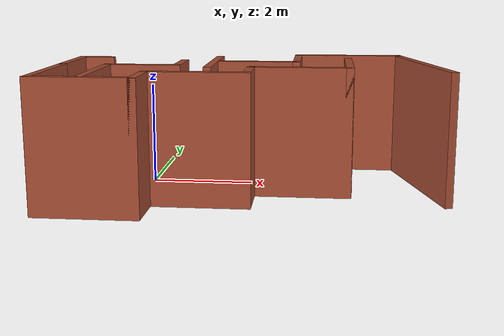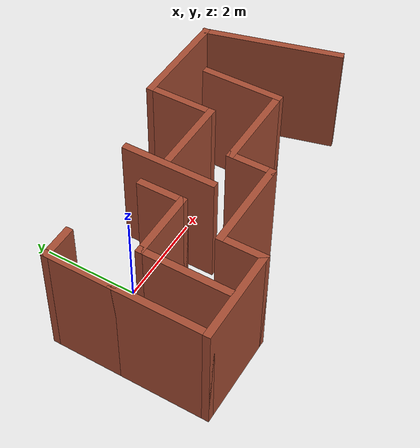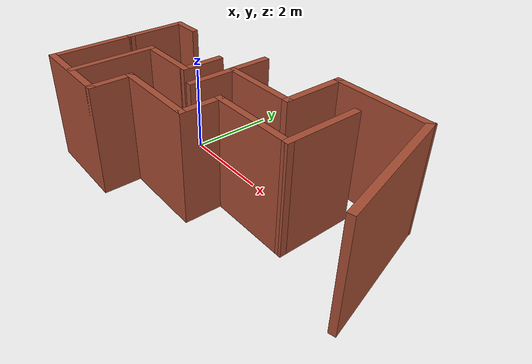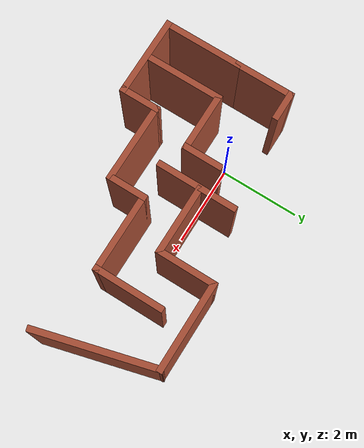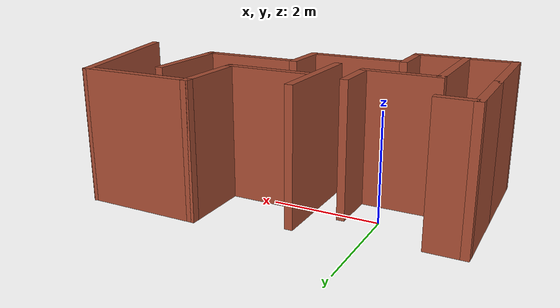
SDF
<?xml version='1.0'?>
<sdf version='1.7'>
  <model name='simplesworld'>
    <pose>2.06725 -0.621572 0 0 -0 0</pose>
    <link name='Wall_0'>
      <collision name='Wall_0_Collision'>
        <geometry>
          <box>
            <size>2 0.15 2.5</size>
          </box>
        </geometry>
        <pose>0 0 1.25 0 -0 0</pose>
      </collision>
      <visual name='Wall_0_Visual'>
        <pose>0 0 1.25 0 -0 0</pose>
        <geometry>
          <box>
            <size>2 0.15 2.5</size>
          </box>
        </geometry>
        <material>
          <script>
            <uri>file://media/materials/scripts/gazebo.material</uri>
            <name>Gazebo/Bricks</name>
          </script>
          <ambient>1 1 1 1</ambient>
        </material>
        <meta>
          <layer>0</layer>
        </meta>
      </visual>
      <pose>-3.68724 -1.07343 0 0 -0 -1.5708</pose>
    </link>
    <link name='Wall_1'>
      <collision name='Wall_1_Collision'>
        <geometry>
          <box>
            <size>2 0.15 2.5</size>
          </box>
        </geometry>
        <pose>0 0 1.25 0 -0 0</pose>
      </collision>
      <visual name='Wall_1_Visual'>
        <pose>0 0 1.25 0 -0 0</pose>
        <geometry>
          <box>
            <size>2 0.15 2.5</size>
          </box>
        </geometry>
        <material>
          <script>
            <uri>file://media/materials/scripts/gazebo.material</uri>
            <name>Gazebo/Bricks</name>
          </script>
          <ambient>1 1 1 1</ambient>
        </material>
        <meta>
          <layer>0</layer>
        </meta>
      </visual>
      <pose>-2.76225 -1.99843 0 0 -0 0</pose>
    </link>
    <link name='Wall_10'>
      <collision name='Wall_10_Collision'>
        <geometry>
          <box>
            <size>2 0.15 2.5</size>
          </box>
        </geometry>
        <pose>0 0 1.25 0 -0 0</pose>
      </collision>
      <visual name='Wall_10_Visual'>
        <pose>0 0 1.25 0 -0 0</pose>
        <geometry>
          <box>
            <size>2 0.15 2.5</size>
          </box>
        </geometry>
        <material>
          <script>
            <uri>file://media/materials/scripts/gazebo.material</uri>
            <name>Gazebo/Bricks</name>
          </script>
          <ambient>1 1 1 1</ambient>
        </material>
        <meta>
          <layer>0</layer>
        </meta>
      </visual>
      <pose>-0.807245 0.546572 0 0 -0 -1.5708</pose>
    </link>
    <link name='Wall_12'>
      <collision name='Wall_12_Collision'>
        <geometry>
          <box>
            <size>2 0.15 2.5</size>
          </box>
        </geometry>
        <pose>0 0 1.25 0 -0 0</pose>
      </collision>
      <visual name='Wall_12_Visual'>
        <pose>0 0 1.25 0 -0 0</pose>
        <geometry>
          <box>
            <size>2 0.15 2.5</size>
          </box>
        </geometry>
        <material>
          <script>
            <uri>file://media/materials/scripts/gazebo.material</uri>
            <name>Gazebo/Bricks</name>
          </script>
          <ambient>1 1 1 1</ambient>
        </material>
        <meta>
          <layer>0</layer>
        </meta>
      </visual>
      <pose>0.937755 -0.298428 0 0 -0 0</pose>
    </link>
    <link name='Wall_13'>
      <collision name='Wall_13_Collision'>
        <geometry>
          <box>
            <size>1.75 0.15 2.5</size>
          </box>
        </geometry>
        <pose>0 0 1.25 0 -0 0</pose>
      </collision>
      <visual name='Wall_13_Visual'>
        <pose>0 0 1.25 0 -0 0</pose>
        <geometry>
          <box>
            <size>1.75 0.15 2.5</size>
          </box>
        </geometry>
        <material>
          <script>
            <uri>file://media/materials/scripts/gazebo.material</uri>
            <name>Gazebo/Bricks</name>
          </script>
          <ambient>1 1 1 1</ambient>
        </material>
        <meta>
          <layer>0</layer>
        </meta>
      </visual>
      <pose>1.86275 0.501572 0 0 -0 1.5708</pose>
    </link>
    <link name='Wall_15'>
      <collision name='Wall_15_Collision'>
        <geometry>
          <box>
            <size>1.5 0.15 2.5</size>
          </box>
        </geometry>
        <pose>0 0 1.25 0 -0 0</pose>
      </collision>
      <visual name='Wall_15_Visual'>
        <pose>0 0 1.25 0 -0 0</pose>
        <geometry>
          <box>
            <size>1.5 0.15 2.5</size>
          </box>
        </geometry>
        <material>
          <script>
            <uri>file://media/materials/scripts/gazebo.material</uri>
            <name>Gazebo/Bricks</name>
          </script>
          <ambient>1 1 1 1</ambient>
        </material>
        <meta>
          <layer>0</layer>
        </meta>
      </visual>
      <pose>-3.68724 0.526572 0 0 -0 1.5708</pose>
    </link>
    <link name='Wall_16'>
      <collision name='Wall_16_Collision'>
        <geometry>
          <box>
            <size>0.75 0.15 2.5</size>
          </box>
        </geometry>
        <pose>0 0 1.25 0 -0 0</pose>
      </collision>
      <visual name='Wall_16_Visual'>
        <pose>0 0 1.25 0 -0 0</pose>
        <geometry>
          <box>
            <size>0.75 0.15 2.5</size>
          </box>
        </geometry>
        <material>
          <script>
            <uri>file://media/materials/scripts/gazebo.material</uri>
            <name>Gazebo/Bricks</name>
          </script>
          <ambient>1 1 1 1</ambient>
        </material>
        <meta>
          <layer>0</layer>
        </meta>
      </visual>
      <pose>-3.38725 1.20157 0 0 -0 0</pose>
    </link>
    <link name='Wall_18'>
      <collision name='Wall_18_Collision'>
        <geometry>
          <box>
            <size>1.75 0.15 2.5</size>
          </box>
        </geometry>
        <pose>0 0 1.25 0 -0 0</pose>
      </collision>
      <visual name='Wall_18_Visual'>
        <pose>0 0 1.25 0 -0 0</pose>
        <geometry>
          <box>
            <size>1.75 0.15 2.5</size>
          </box>
        </geometry>
        <material>
          <script>
            <uri>file://media/materials/scripts/gazebo.material</uri>
            <name>Gazebo/Bricks</name>
          </script>
          <ambient>1 1 1 1</ambient>
        </material>
        <meta>
          <layer>0</layer>
        </meta>
      </visual>
      <pose>0.032755 0.631572 0 0 -0 0</pose>
    </link>
    <link name='Wall_19'>
      <collision name='Wall_19_Collision'>
        <geometry>
          <box>
            <size>1.5 0.15 2.5</size>
          </box>
        </geometry>
        <pose>0 0 1.25 0 -0 0</pose>
      </collision>
      <visual name='Wall_19_Visual'>
        <pose>0 0 1.25 0 -0 0</pose>
        <geometry>
          <box>
            <size>1.5 0.15 2.5</size>
          </box>
        </geometry>
        <material>
          <script>
            <uri>file://media/materials/scripts/gazebo.material</uri>
            <name>Gazebo/Bricks</name>
          </script>
          <ambient>1 1 1 1</ambient>
        </material>
        <meta>
          <layer>0</layer>
        </meta>
      </visual>
      <pose>0.832755 1.30657 0 0 -0 1.5708</pose>
    </link>
    <link name='Wall_2'>
      <collision name='Wall_2_Collision'>
        <geometry>
          <box>
            <size>1 0.15 2.5</size>
          </box>
        </geometry>
        <pose>0 0 1.25 0 -0 0</pose>
      </collision>
      <visual name='Wall_2_Visual'>
        <pose>0 0 1.25 0 -0 0</pose>
        <geometry>
          <box>
            <size>1 0.15 2.5</size>
          </box>
        </geometry>
        <material>
          <script>
            <uri>file://media/materials/scripts/gazebo.material</uri>
            <name>Gazebo/Bricks</name>
          </script>
          <ambient>1 1 1 1</ambient>
        </material>
        <meta>
          <layer>0</layer>
        </meta>
      </visual>
      <pose>-1.83725 -1.57343 0 0 -0 1.5708</pose>
    </link>
    <link name='Wall_20'>
      <collision name='Wall_20_Collision'>
        <geometry>
          <box>
            <size>2.25 0.15 2.5</size>
          </box>
        </geometry>
        <pose>0 0 1.25 0 -0 0</pose>
      </collision>
      <visual name='Wall_20_Visual'>
        <pose>0 0 1.25 0 -0 0</pose>
        <geometry>
          <box>
            <size>2.25 0.15 2.5</size>
          </box>
        </geometry>
        <material>
          <script>
            <uri>file://media/materials/scripts/gazebo.material</uri>
            <name>Gazebo/Bricks</name>
          </script>
          <ambient>1 1 1 1</ambient>
        </material>
        <meta>
          <layer>0</layer>
        </meta>
      </visual>
      <pose>1.88275 1.98157 0 0 -0 0</pose>
    </link>
    <link name='Wall_21'>
      <collision name='Wall_21_Collision'>
        <geometry>
          <box>
            <size>3 0.15 2.5</size>
          </box>
        </geometry>
        <pose>0 0 1.25 0 -0 0</pose>
      </collision>
      <visual name='Wall_21_Visual'>
        <pose>0 0 1.25 0 -0 0</pose>
        <geometry>
          <box>
            <size>3 0.15 2.5</size>
          </box>
        </geometry>
        <material>
          <script>
            <uri>file://media/materials/scripts/gazebo.material</uri>
            <name>Gazebo/Bricks</name>
          </script>
          <ambient>1 1 1 1</ambient>
        </material>
        <meta>
          <layer>0</layer>
        </meta>
      </visual>
      <pose>3.30157 0.605128 0 0 -0 -1.309</pose>
    </link>
    <link name='Wall_3'>
      <collision name='Wall_3_Collision'>
        <geometry>
          <box>
            <size>2 0.15 2.5</size>
          </box>
        </geometry>
        <pose>0 0 1.25 0 -0 0</pose>
      </collision>
      <visual name='Wall_3_Visual'>
        <pose>0 0 1.25 0 -0 0</pose>
        <geometry>
          <box>
            <size>2 0.15 2.5</size>
          </box>
        </geometry>
        <material>
          <script>
            <uri>file://media/materials/scripts/gazebo.material</uri>
            <name>Gazebo/Bricks</name>
          </script>
          <ambient>1 1 1 1</ambient>
        </material>
        <meta>
          <layer>0</layer>
        </meta>
      </visual>
      <pose>-0.912245 -1.14843 0 0 -0 0</pose>
    </link>
    <link name='Wall_4'>
      <collision name='Wall_4_Collision'>
        <geometry>
          <box>
            <size>1 0.15 2.5</size>
          </box>
        </geometry>
        <pose>0 0 1.25 0 -0 0</pose>
      </collision>
      <visual name='Wall_4_Visual'>
        <pose>0 0 1.25 0 -0 0</pose>
        <geometry>
          <box>
            <size>1 0.15 2.5</size>
          </box>
        </geometry>
        <material>
          <script>
            <uri>file://media/materials/scripts/gazebo.material</uri>
            <name>Gazebo/Bricks</name>
          </script>
          <ambient>1 1 1 1</ambient>
        </material>
        <meta>
          <layer>0</layer>
        </meta>
      </visual>
      <pose>0.012755 -0.723428 0 0 -0 1.5708</pose>
    </link>
    <link name='Wall_6'>
      <collision name='Wall_6_Collision'>
        <geometry>
          <box>
            <size>2 0.15 2.5</size>
          </box>
        </geometry>
        <pose>0 0 1.25 0 -0 0</pose>
      </collision>
      <visual name='Wall_6_Visual'>
        <pose>0 0 1.25 0 -0 0</pose>
        <geometry>
          <box>
            <size>2 0.15 2.5</size>
          </box>
        </geometry>
        <material>
          <script>
            <uri>file://media/materials/scripts/gazebo.material</uri>
            <name>Gazebo/Bricks</name>
          </script>
          <ambient>1 1 1 1</ambient>
        </material>
        <meta>
          <layer>0</layer>
        </meta>
      </visual>
      <pose>-2.78724 -1.04343 0 0 -0 1.5708</pose>
    </link>
    <link name='Wall_7'>
      <collision name='Wall_7_Collision'>
        <geometry>
          <box>
            <size>1.5 0.15 2.5</size>
          </box>
        </geometry>
        <pose>0 0 1.25 0 -0 0</pose>
      </collision>
      <visual name='Wall_7_Visual'>
        <pose>0 0 1.25 0 -0 0</pose>
        <geometry>
          <box>
            <size>1.5 0.15 2.5</size>
          </box>
        </geometry>
        <material>
          <script>
            <uri>file://media/materials/scripts/gazebo.material</uri>
            <name>Gazebo/Bricks</name>
          </script>
          <ambient>1 1 1 1</ambient>
        </material>
        <meta>
          <layer>0</layer>
        </meta>
      </visual>
      <pose>-2.11225 -0.118428 0 0 -0 0</pose>
    </link>
    <link name='Wall_8'>
      <collision name='Wall_8_Collision'>
        <geometry>
          <box>
            <size>1 0.15 2.5</size>
          </box>
        </geometry>
        <pose>0 0 1.25 0 -0 0</pose>
      </collision>
      <visual name='Wall_8_Visual'>
        <pose>0 0 1.25 0 -0 0</pose>
        <geometry>
          <box>
            <size>1 0.15 2.5</size>
          </box>
        </geometry>
        <material>
          <script>
            <uri>file://media/materials/scripts/gazebo.material</uri>
            <name>Gazebo/Bricks</name>
          </script>
          <ambient>1 1 1 1</ambient>
        </material>
        <meta>
          <layer>0</layer>
        </meta>
      </visual>
      <pose>-1.43725 0.306572 0 0 -0 1.5708</pose>
    </link>
    <static>1</static>
  </model>
</sdf>
